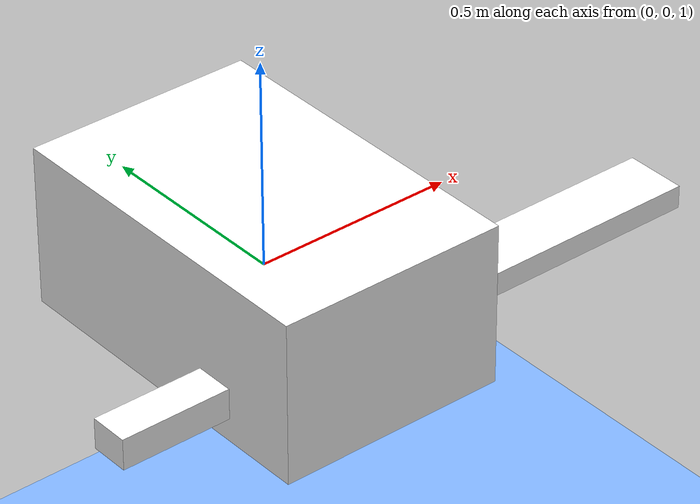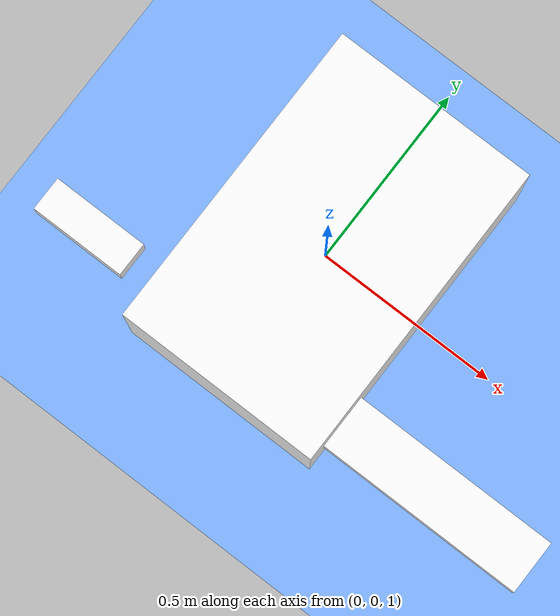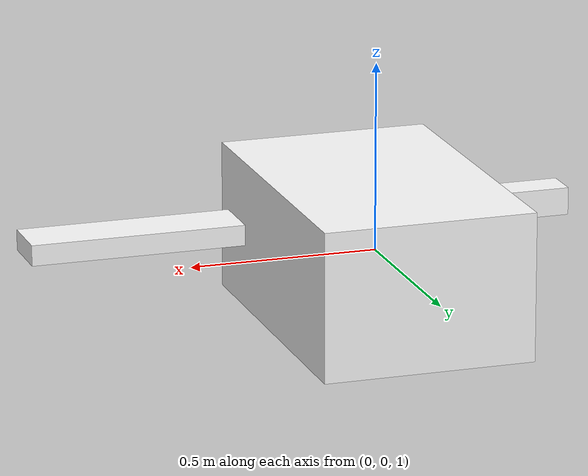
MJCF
<mujoco>
    <worldbody>
        <light diffuse=".5 .5 .5" pos="0 0 2" dir="0 -1 0" />
        <geom type="plane" size="10 10 0.1" rgba="0.5 0.7 1 1" />

        <body name="flappybird" pos="0 0 1" euler="0 0 0">
            <joint type="free" axis="0 0 0" pos="0 0 0" />
            <body name="body" pos="0 0 0" euler="0 0 0">
                <geom type="box" size="0.2819234218036489 0.42922106796068804 0.19783302235774008" rgba="1 1 1 1" mass="0.009012384866873759" />
            </body>

            <body name="wing1" pos=".5 -.3 0" euler="0 -90 0">
                <joint name="joint1" type="hinge" axis="0 1 0" pos="0 0 .25" range="-45 45" />
                <geom type="box" size="0.02779009974956949 0.07472044885190242 0.3598253618271993" rgba="1 1 1 1" mass="0.6196072842412333" />
            </body>

            <body name="wing2" pos="-.5 -.3 0" euler="0 90 0">
                <joint name="joint2" type="hinge" axis="0 1 0" pos="0 0 .25" range="-45 45" />
                <geom type="box" size="0.03727653073554686 0.04730041549318492 0.13374830338391064" rgba="1 1 1 1" mass="0.5139519655226836" />
            </body>

        </body>
    </worldbody>

    <actuator>
        <motor joint="joint1" name="m1" gear="9.770042247774931" ctrllimited="true" ctrlrange="-5 5" />
        <motor joint="joint2" name="m2" gear="15.063708924873312" ctrllimited="true" ctrlrange="-5 5" />

</actuator>

</mujoco>
